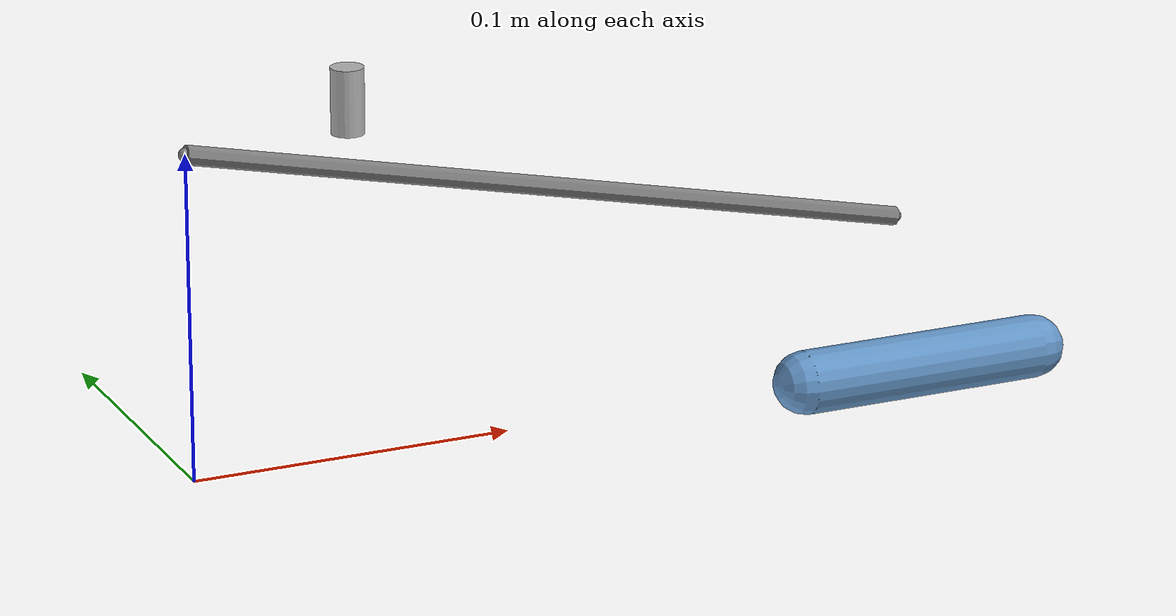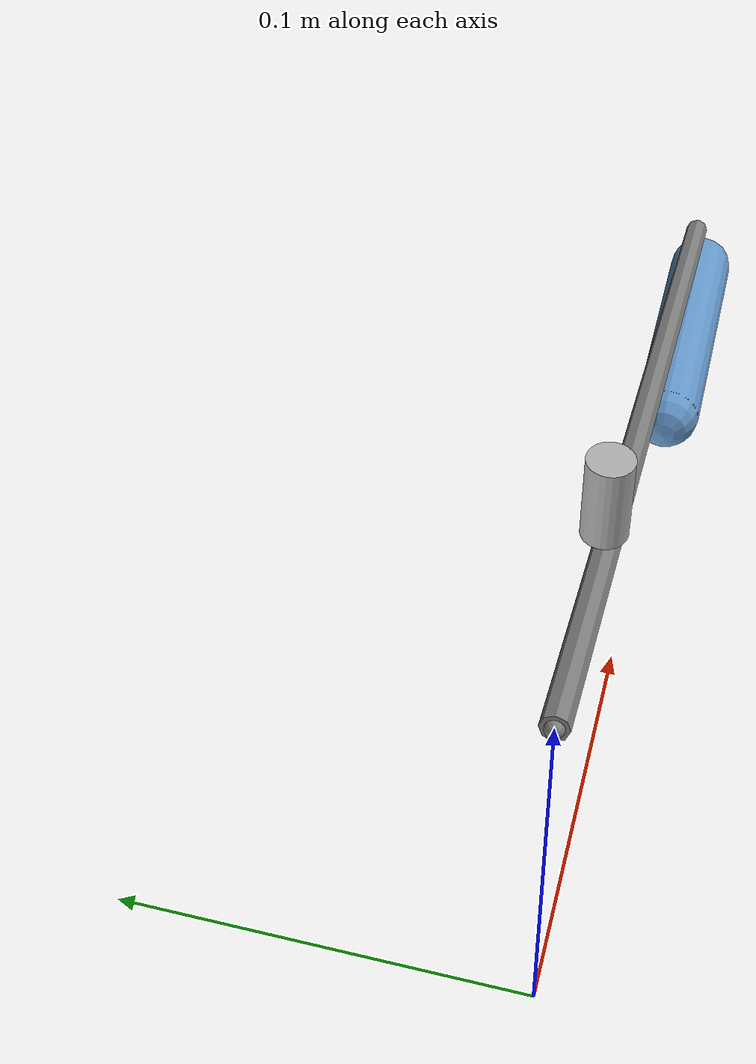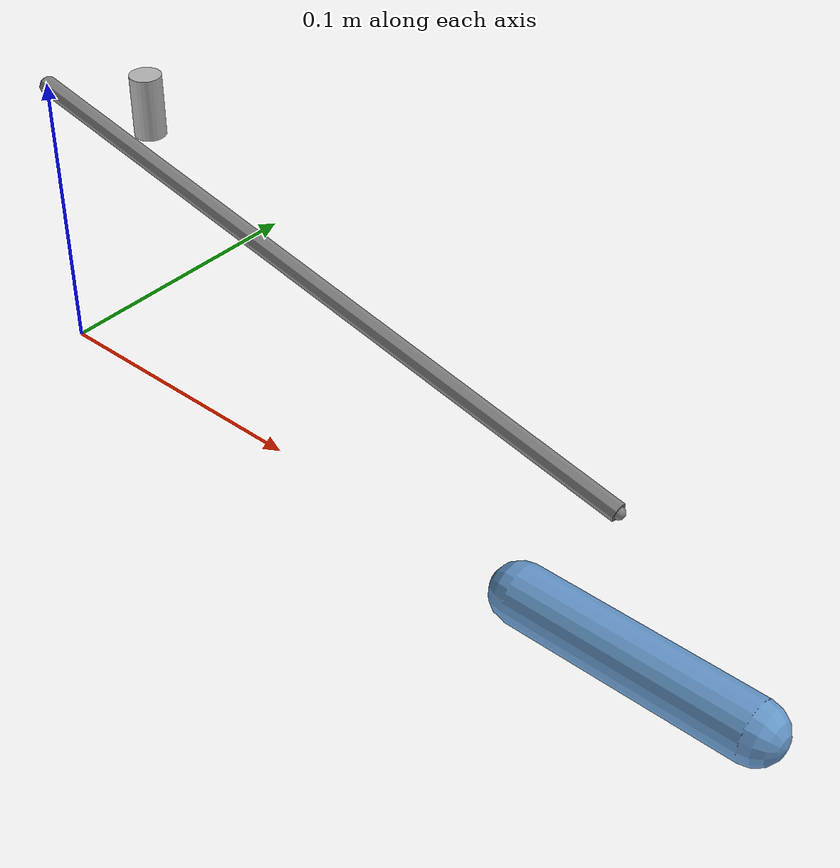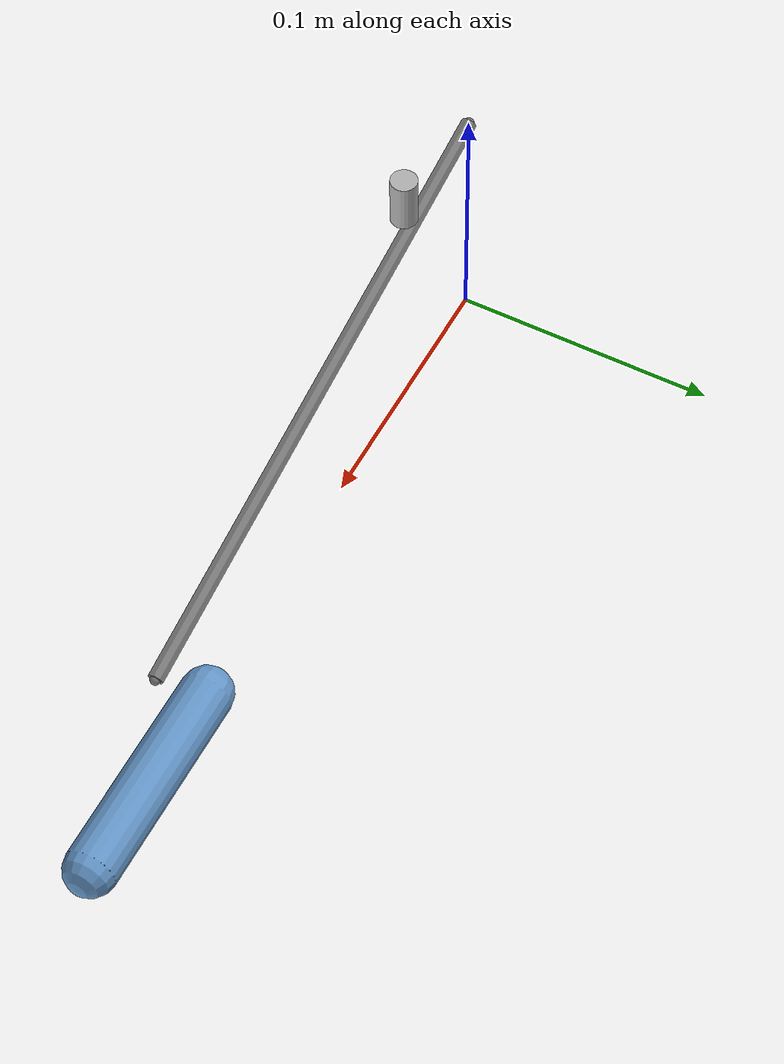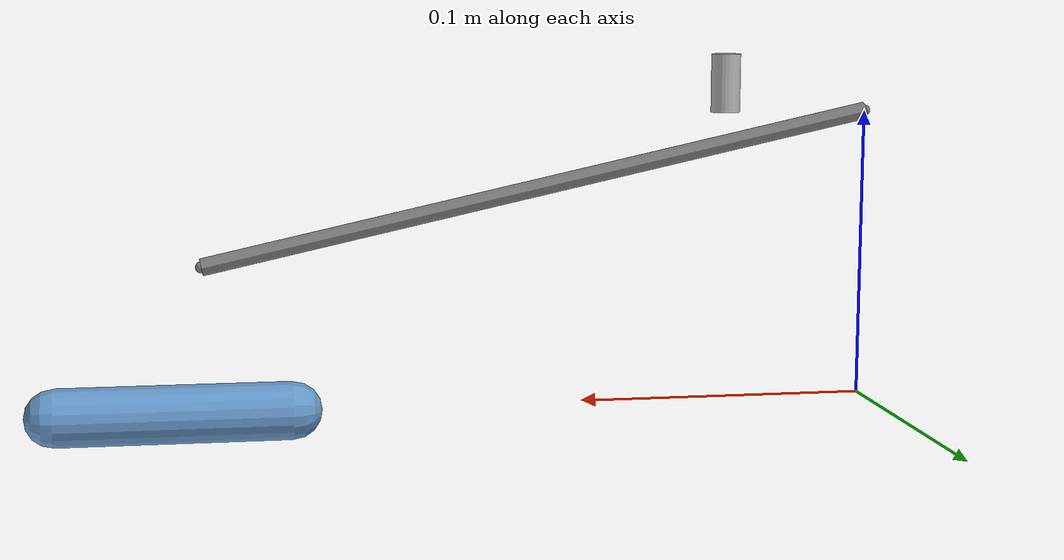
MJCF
<mujoco model="wire_test">
    <compiler angle="degree"/>
    <option timestep="0.001"/>
    <asset>
        <material name="pulley_mat" rgba="0.7 0.7 0.7 1"/>
    </asset>

    <worldbody>
        <body name="base" pos="0 0 0">
            <site name="anchor_base" pos="0 0 0.10" size="0.002"/>
            <!-- 래핑용 원통: fromto를 쓰면 size는 반지름 1개만 필요 -->
            <geom name="pulley1" type="cylinder"
                    fromto="0.05 0 0.10   0.05 0 0.12"
                    size="0.005" material="pulley_mat"
                    contype="0" conaffinity="0"/>
            <body name="link" pos="0.20 0 0">
            <!-- Y축 힌지, -45~45도 -->
            <joint name="hinge" type="hinge" axis="0 1 0" limited="true" range="-45 45"/>

            <!-- 관성용 질량 지오메트리 (x축으로 8cm 막대, 지름 2cm, 질량 0.25kg) -->
            <geom name="link_mass" type="capsule"
                    fromto="0 0 0   0.08 0 0"  size="0.01"
                    mass="0.25" rgba="0.4 0.6 0.8 1"/>

            <!-- 힌지축에서 약간 떨어뜨려 모멘트암 확보 -->
            <site name="anchor_link" pos="0.03 0 0.05" size="0.002"/>
            </body>
        </body>
    </worldbody>

    <tendon>
        <spatial name="wire"
                stiffness="1.94e5"
                damping="78.8"
                frictionloss="1.0"
                limited="true" range="0.48 0.52"
                springlength="0.499845">
        <site site="anchor_base"/>
        <geom geom="pulley1"/>
        <site site="anchor_link"/>
        </spatial>
    </tendon>
    <sensor>
        <tendonpos  tendon="wire"/>
        <tendonvel  tendon="wire"/>
        <tendonactuatorfrc tendon="wire"/>
        <!-- 액추에이터 자체 출력힘(전달 전) / 조인트에 들어간 총 액추에이터힘 -->
        <actuatorfrc actuator="wire_motor"/>
        <jointactuatorfrc joint="hinge"/>
        <jointpos   joint="hinge"/>
        <jointvel   joint="hinge"/>
    </sensor>
    <actuator>
        <motor name="wire_motor" tendon="wire" gear="1.0"/>
    </actuator>
</mujoco>
